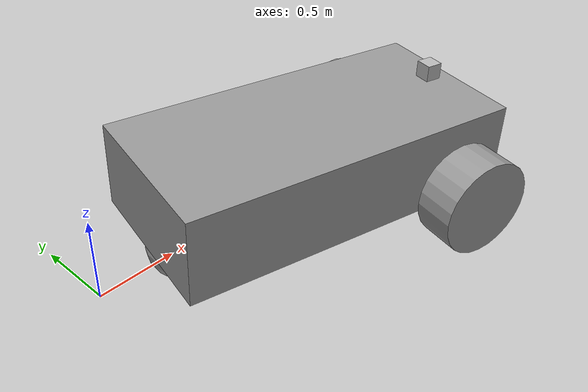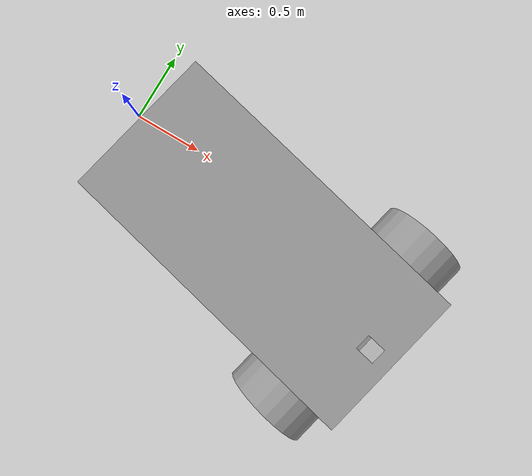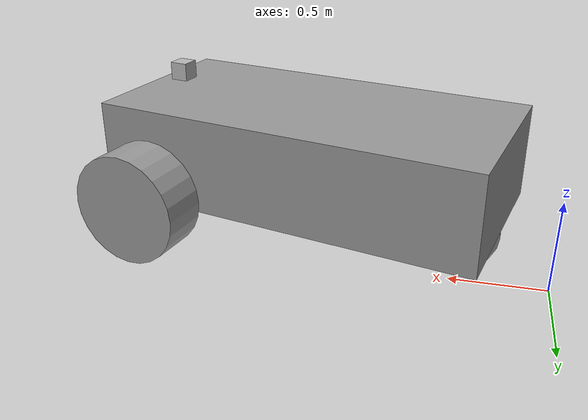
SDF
<sdf version="1.7">
 <world name="default">
  <light name="sun" type="directional">
   <pose>0 0 10 0 -0 0</pose>
   <diffuse>0.8 0.8 0.8 1</diffuse>
   <specular>0.2 0.2 0.2 1</specular>
   <attenuation>
    <range>1000</range>
    <constant>0.9</constant>
    <linear>0.01</linear>
    <quadratic>0.001</quadratic>
   </attenuation>
   <direction>-0.5 0.1 -0.9</direction>
   <spot><inner_angle>0</inner_angle><outer_angle>0</outer_angle><falloff>0</falloff></spot>
  </light>
  <model name="ground_plane">
   <static>1</static>
   <link name="link">
    <collision name="collision">
     <geometry><plane><normal>0 0 1</normal><size>100 100</size></plane></geometry>
     <surface>
      <contact><collide_bitmask>65535</collide_bitmask></contact>
      <friction><ode><mu>100</mu><mu2>50</mu2></ode></friction>
     </surface>
    </collision>
   </link>
  </model>
  <model name="my_vehicle">
   <pose>3.95079 -0.490027 0.417308 3e-06 -6e-06 0.182755</pose>
   <scale>1 1 1</scale>
   <link name="link_0">
    <pose>3.65652 -0.545429 0.500005 3e-06 -6e-06 0.182755</pose>
    <velocity>0.000924 -0.001563 -0.000961 0.002724 0.002499 0.000226</velocity>
    <acceleration>0.387686 -2.68536 -2.07465 1.79238 0.156907 -0.73339</acceleration>
    <wrench>0.417945 -2.89495 -2.23658 0 -0 0</wrench>
   </link>
   <link name="link_1">
    <pose>4.2652 0.217935 0.300012 1.57065 0.878739 0.182642</pose>
    <velocity>0.000244 -0.000901 -0.000396 0.003024 0.000717 0.000234</velocity>
    <acceleration>-0.108549 -1.99687 -0.850703 2.86466 -0.696775 2.51942</acceleration>
    <wrench>-0.108549 -1.99687 -0.850703 0 -0 0</wrench>
   </link>
   <link name="link_1_clone">
    <pose>4.49511 -1.02605 0.300008 -1.57061 1.04154 -2.95868</pose>
    <velocity>0.000546 -0.00085 -0.004386 0.003423 -0.001548 0.000218</velocity>
    <acceleration>-1.00048 -2.16704 -9.2686 0.191593 1.19658 -0.63555</acceleration>
    <wrench>-1.00048 -2.16704 -9.2686 0 -0 0</wrench>
   </link>
   <link name="link_2">
    <pose>2.83318 -0.697595 0.2 1.46745 -1.21945 0.272433</pose>
    <velocity>0.000212 -0.000918 0.00068 0.004591 0.001063 0</velocity>
    <acceleration>-1.28338 -0.320233 1.36062 1.7934 -1.18021 -3.14159</acceleration>
    <wrench>-1.28338 -0.320233 1.36062 0 -0 0</wrench>
   </link>
   <model name="depth_camera">
    <pose>2.10452 -0.580258 0.768131 0.031737 0.010446 -0.230866</pose>
    <scale>1 1 1</scale>
    <link name="link">
     <pose>4.50392 -0.398994 0.83641 2e-06 -5.9e-05 0.182755</pose>
     <velocity>0.001534 0.000364 0.000542 0.002902 0.003913 -0.000843</velocity>
     <acceleration>0.778191 0.027755 0.045567 -0.05842 1.15075 -2.82665</acceleration>
     <wrench>0.077819 0.002775 0.004557 0 -0 0</wrench>
    </link>
   </model>
   <plugin name="velodyne_control" filename="libvelodyne_plugin.so"><velocity>1</velocity></plugin>
  </model>
  <gravity>0 0 -9.8</gravity>
  <magnetic_field>6e-06 2.3e-05 -4.2e-05</magnetic_field>
  <atmosphere type="adiabatic"/>
  <physics type="ode">
   <max_step_size>0.001</max_step_size>
   <real_time_factor>1</real_time_factor>
   <real_time_update_rate>1000</real_time_update_rate>
  </physics>
  <scene><ambient>0.4 0.4 0.4 1</ambient><background>0.7 0.7 0.7 1</background><shadows>1</shadows></scene>
  <spherical_coordinates>
   <surface_model>EARTH_WGS84</surface_model>
   <latitude_deg>0</latitude_deg>
   <longitude_deg>0</longitude_deg>
   <elevation>0</elevation>
   <heading_deg>0</heading_deg>
  </spherical_coordinates>
  <light name="user_point_light_0" type="point">
   <pose>0.633436 -0.668892 1 0 -0 0</pose>
   <diffuse>0.5 0.5 0.5 1</diffuse>
   <specular>0.1 0.1 0.1 1</specular>
   <attenuation>
    <range>20</range>
    <constant>0.5</constant>
    <linear>0.01</linear>
    <quadratic>0.001</quadratic>
   </attenuation>
   <cast_shadows>0</cast_shadows>
   <direction>0 0 -1</direction>
   <spot><inner_angle>0</inner_angle><outer_angle>0</outer_angle><falloff>0</falloff></spot>
  </light>
  <model name="my_vehicle">
   <link name="link_0">
    <inertial>
     <mass>1.07805</mass>
     <inertia>
      <ixx>0.114096</ixx>
      <ixy>0</ixy>
      <ixz>0</ixz>
      <iyy>0.410902</iyy>
      <iyz>0</iyz>
      <izz>0.476481</izz>
     </inertia>
    </inertial>
    <pose>-0.29944 -0.000998 0.082699 0 -0 0</pose>
    <visual name="visual">
     <geometry><box><size>2.07456 1 0.519643</size></box></geometry>
     <material>
      <lighting>1</lighting>
      <script><uri>file://media/materials/scripts/gazebo.material</uri><name>Gazebo/Grey</name></script>
      <shader type="pixel"/>
      <emissive>0 0 0 1</emissive>
     </material>
    </visual>
    <collision name="collision">
     <geometry><box><size>2.07456 1 0.519643</size></box></geometry>
     <surface>
      <friction>
       <ode><mu>1</mu><mu2>1</mu2><fdir1>0 0 0</fdir1><slip1>0</slip1><slip2>0</slip2></ode>
       <torsional>
        <coefficient>1</coefficient>
        <patch_radius>0</patch_radius>
        <surface_radius>0</surface_radius>
        <use_patch_radius>1</use_patch_radius>
        <ode><slip>0</slip></ode>
       </torsional>
      </friction>
      <bounce><restitution_coefficient>0</restitution_coefficient><threshold>1e+06</threshold></bounce>
      <contact>
       <collide_without_contact>0</collide_without_contact>
       <collide_without_contact_bitmask>1</collide_without_contact_bitmask>
       <collide_bitmask>1</collide_bitmask>
       <ode>
        <soft_cfm>0</soft_cfm>
        <soft_erp>0.2</soft_erp>
        <kp>1e+13</kp>
        <kd>1</kd>
        <max_vel>0.01</max_vel>
        <min_depth>0</min_depth>
       </ode>
       <bullet>
        <split_impulse>1</split_impulse>
        <split_impulse_penetration_threshold>-0.01</split_impulse_penetration_threshold>
        <soft_cfm>0</soft_cfm>
        <soft_erp>0.2</soft_erp>
        <kp>1e+13</kp>
        <kd>1</kd>
       </bullet>
      </contact>
     </surface>
    </collision>
   </link>
   <link name="link_1">
    <inertial>
     <mass>1</mass>
     <inertia><ixx>0.145833</ixx><ixy>0</ixy><ixz>0</ixz><iyy>0.145833</iyy><iyz>0</iyz><izz>0.125</izz></inertia>
    </inertial>
    <pose>0.437838 0.639031 -0.117301 1.5707 -0 0</pose>
    <visual name="visual">
     <geometry><cylinder><radius>0.3</radius><length>0.25</length></cylinder></geometry>
     <material>
      <lighting>1</lighting>
      <script><uri>file://media/materials/scripts/gazebo.material</uri><name>Gazebo/Grey</name></script>
      <shader type="pixel"><normal_map>__default__</normal_map></shader>
      <ambient>0.3 0.3 0.3 1</ambient>
      <diffuse>0.7 0.7 0.7 1</diffuse>
      <specular>0.01 0.01 0.01 1</specular>
      <emissive>0 0 0 1</emissive>
     </material>
    </visual>
    <collision name="collision">
     <geometry><cylinder><radius>0.3</radius><length>0.25</length></cylinder></geometry>
     <surface>
      <friction>
       <ode><mu>1</mu><mu2>1</mu2><fdir1>0 0 0</fdir1><slip1>0</slip1><slip2>0</slip2></ode>
       <torsional>
        <coefficient>1</coefficient>
        <patch_radius>0</patch_radius>
        <surface_radius>0</surface_radius>
        <use_patch_radius>1</use_patch_radius>
        <ode><slip>0</slip></ode>
       </torsional>
      </friction>
      <bounce><restitution_coefficient>0</restitution_coefficient><threshold>1e+06</threshold></bounce>
      <contact>
       <collide_without_contact>0</collide_without_contact>
       <collide_without_contact_bitmask>1</collide_without_contact_bitmask>
       <collide_bitmask>1</collide_bitmask>
       <ode>
        <soft_cfm>0</soft_cfm>
        <soft_erp>0.2</soft_erp>
        <kp>1e+13</kp>
        <kd>1</kd>
        <max_vel>0.01</max_vel>
        <min_depth>0</min_depth>
       </ode>
       <bullet>
        <split_impulse>1</split_impulse>
        <split_impulse_penetration_threshold>-0.01</split_impulse_penetration_threshold>
        <soft_cfm>0</soft_cfm>
        <soft_erp>0.2</soft_erp>
        <kp>1e+13</kp>
        <kd>1</kd>
       </bullet>
      </contact>
     </surface>
    </collision>
   </link>
   <link name="link_1_clone">
    <inertial>
     <mass>1</mass>
     <inertia><ixx>0.145833</ixx><ixy>0</ixy><ixz>0</ixz><iyy>0.145833</iyy><iyz>0</iyz><izz>0.125</izz></inertia>
    </inertial>
    <pose>0.437838 -0.626027 -0.117301 1.5707 -0 0</pose>
    <visual name="visual">
     <geometry><cylinder><radius>0.3</radius><length>0.25</length></cylinder></geometry>
     <material>
      <lighting>1</lighting>
      <script><uri>file://media/materials/scripts/gazebo.material</uri><name>Gazebo/Grey</name></script>
      <shader type="pixel"><normal_map>__default__</normal_map></shader>
      <ambient>0.3 0.3 0.3 1</ambient>
      <diffuse>0.7 0.7 0.7 1</diffuse>
      <specular>0.01 0.01 0.01 1</specular>
      <emissive>0 0 0 1</emissive>
     </material>
    </visual>
    <collision name="collision">
     <geometry><cylinder><radius>0.3</radius><length>0.25</length></cylinder></geometry>
     <surface>
      <friction>
       <ode><mu>1</mu><mu2>1</mu2><fdir1>0 0 0</fdir1><slip1>0</slip1><slip2>0</slip2></ode>
       <torsional>
        <coefficient>1</coefficient>
        <patch_radius>0</patch_radius>
        <surface_radius>0</surface_radius>
        <use_patch_radius>1</use_patch_radius>
        <ode><slip>0</slip></ode>
       </torsional>
      </friction>
      <bounce><restitution_coefficient>0</restitution_coefficient><threshold>1e+06</threshold></bounce>
      <contact>
       <collide_without_contact>0</collide_without_contact>
       <collide_without_contact_bitmask>1</collide_without_contact_bitmask>
       <collide_bitmask>1</collide_bitmask>
       <ode>
        <soft_cfm>0</soft_cfm>
        <soft_erp>0.2</soft_erp>
        <kp>1e+13</kp>
        <kd>1</kd>
        <max_vel>0.01</max_vel>
        <min_depth>0</min_depth>
       </ode>
       <bullet>
        <split_impulse>1</split_impulse>
        <split_impulse_penetration_threshold>-0.01</split_impulse_penetration_threshold>
        <soft_cfm>0</soft_cfm>
        <soft_erp>0.2</soft_erp>
        <kp>1e+13</kp>
        <kd>1</kd>
       </bullet>
      </contact>
     </surface>
    </collision>
   </link>
   <link name="link_2">
    <inertial>
     <mass>1</mass>
     <inertia><ixx>0.1</ixx><ixy>0</ixy><ixz>0</ixz><iyy>0.1</iyy><iyz>0</iyz><izz>0.1</izz></inertia>
    </inertial>
    <pose>-1.13672 -0.000998 -0.217301 0 -0 0</pose>
    <visual name="visual">
     <geometry><sphere><radius>0.2</radius></sphere></geometry>
     <material>
      <lighting>1</lighting>
      <script><uri>file://media/materials/scripts/gazebo.material</uri><name>Gazebo/Grey</name></script>
      <shader type="pixel"><normal_map>__default__</normal_map></shader>
      <ambient>0.3 0.3 0.3 1</ambient>
      <diffuse>0.7 0.7 0.7 1</diffuse>
      <specular>0.01 0.01 0.01 1</specular>
      <emissive>0 0 0 1</emissive>
     </material>
    </visual>
    <collision name="collision">
     <geometry><sphere><radius>0.2</radius></sphere></geometry>
     <surface>
      <friction>
       <ode><mu>1</mu><mu2>1</mu2><fdir1>0 0 0</fdir1><slip1>0</slip1><slip2>0</slip2></ode>
       <torsional>
        <coefficient>1</coefficient>
        <patch_radius>0</patch_radius>
        <surface_radius>0</surface_radius>
        <use_patch_radius>1</use_patch_radius>
        <ode><slip>0</slip></ode>
       </torsional>
      </friction>
      <bounce><restitution_coefficient>0</restitution_coefficient><threshold>1e+06</threshold></bounce>
      <contact>
       <collide_without_contact>0</collide_without_contact>
       <collide_without_contact_bitmask>1</collide_without_contact_bitmask>
       <collide_bitmask>1</collide_bitmask>
       <ode>
        <soft_cfm>0</soft_cfm>
        <soft_erp>0.2</soft_erp>
        <kp>1e+13</kp>
        <kd>1</kd>
        <max_vel>0.01</max_vel>
        <min_depth>0</min_depth>
       </ode>
       <bullet>
        <split_impulse>1</split_impulse>
        <split_impulse_penetration_threshold>-0.01</split_impulse_penetration_threshold>
        <soft_cfm>0</soft_cfm>
        <soft_erp>0.2</soft_erp>
        <kp>1e+13</kp>
        <kd>1</kd>
       </bullet>
      </contact>
     </surface>
    </collision>
   </link>
   <model name="depth_camera">
    <link name="link">
     <pose>0 0 0.05 0 -0 0</pose>
     <inertial>
      <mass>0.1</mass>
      <inertia>
       <ixx>0.000166667</ixx>
       <iyy>0.000166667</iyy>
       <izz>0.000166667</izz>
       <ixy>0</ixy>
       <ixz>0</ixz>
       <iyz>0</iyz>
      </inertia>
     </inertial>
     <collision name="collision"><geometry><box><size>0.1 0.1 0.1</size></box></geometry></collision>
     <visual name="visual"><geometry><box><size>0.1 0.1 0.1</size></box></geometry></visual>
     <sensor name="camera" type="depth">
      <camera>
       <horizontal_fov>1.047</horizontal_fov>
       <image><width>320</width><height>240</height></image>
       <clip><near>0.1</near><far>100</far></clip>
      </camera>
      <always_on>1</always_on>
      <update_rate>30</update_rate>
      <visualize>1</visualize>
     </sensor>
    </link>
    <pose>0.560484 -0.011008 0.369204 0 -0 0</pose>
   </model>
   <joint name="link_0_JOINT_0" type="revolute">
    <parent>link_0</parent>
    <child>link_1</child>
    <axis>
     <xyz>0 0 1</xyz>
     <limit>
      <lower>-1.79769e+308</lower>
      <upper>1.79769e+308</upper>
      <effort>-1</effort>
      <velocity>-1</velocity>
     </limit>
     <dynamics>
      <spring_reference>0</spring_reference>
      <spring_stiffness>0</spring_stiffness>
      <damping>0</damping>
      <friction>0</friction>
     </dynamics>
    </axis>
    <physics>
     <ode><limit><cfm>0</cfm><erp>0.2</erp></limit><suspension><cfm>0</cfm><erp>0.2</erp></suspension></ode>
    </physics>
   </joint>
   <joint name="link_0_JOINT_1" type="revolute">
    <parent>link_0</parent>
    <child>link_1_clone</child>
    <axis>
     <xyz>0 0 1</xyz>
     <limit>
      <lower>-1.79769e+308</lower>
      <upper>1.79769e+308</upper>
      <effort>-1</effort>
      <velocity>-1</velocity>
     </limit>
     <dynamics>
      <spring_reference>0</spring_reference>
      <spring_stiffness>0</spring_stiffness>
      <damping>0</damping>
      <friction>0</friction>
     </dynamics>
    </axis>
    <physics>
     <ode><limit><cfm>0</cfm><erp>0.2</erp></limit><suspension><cfm>0</cfm><erp>0.2</erp></suspension></ode>
    </physics>
   </joint>
   <joint name="link_0_JOINT_2" type="ball">
    <parent>link_0</parent>
    <child>link_2</child>
    <physics>
     <ode><limit><cfm>0</cfm><erp>0.2</erp></limit><suspension><cfm>0</cfm><erp>0.2</erp></suspension></ode>
    </physics>
   </joint>
   <joint name="link_0_JOINT_3" type="fixed">
    <parent>link_0</parent>
    <child>depth_camera::link</child>
    <physics>
     <ode><limit><cfm>0</cfm><erp>0.2</erp></limit><suspension><cfm>0</cfm><erp>0.2</erp></suspension></ode>
    </physics>
   </joint>
   <static>0</static>
   <plugin name="follower" filename="libFollowerPlugin.so"/>
   <pose>1.56039 -0.429018 0.405337 0.031737 0.010446 -0.230866</pose>
  </model>
 </world>
</sdf>
